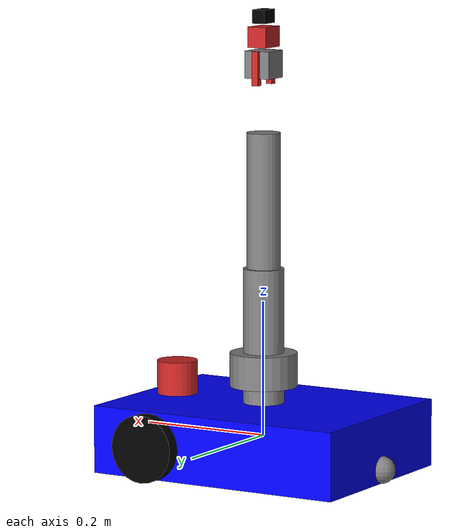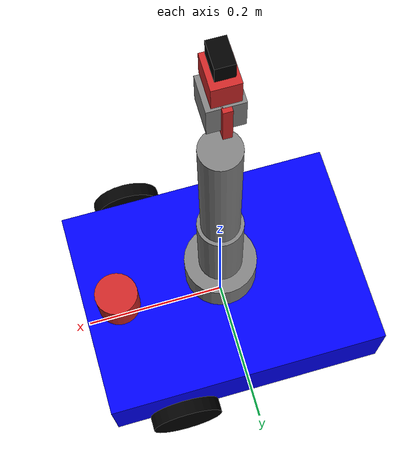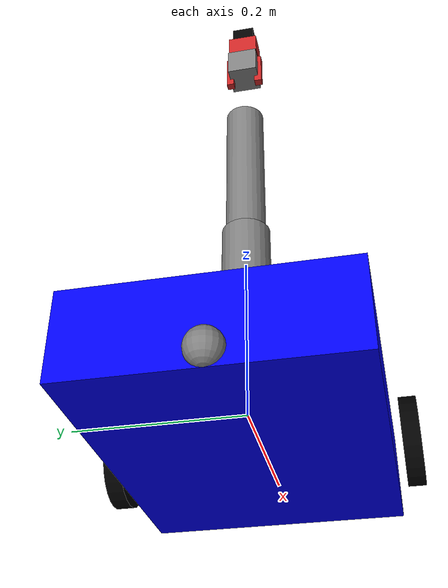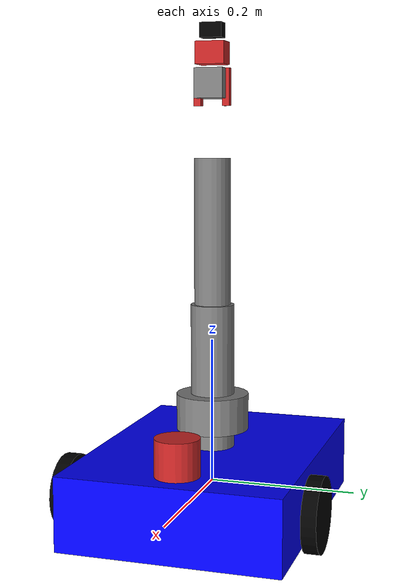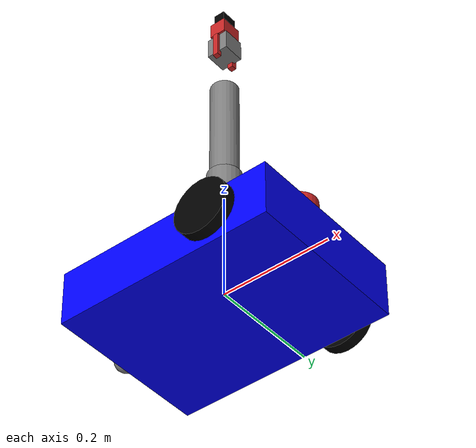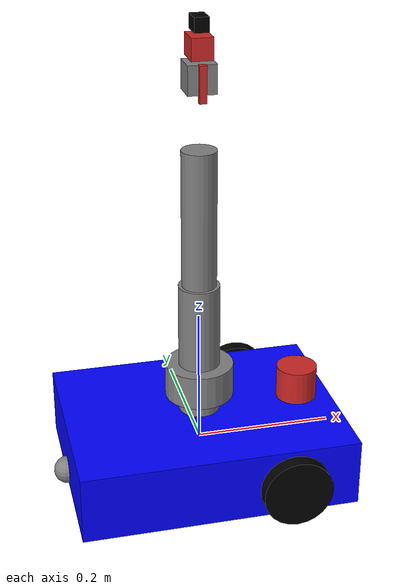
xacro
<?xml version="1.0"?>
<robot name="my_robot" xmlns:xacro="http://www.ros.org/wiki/xacro">

  <xacro:include filename="mobile_base.xacro" />
  <xacro:include filename="robot_arm.xacro" />
  <xacro:include filename="gripper.xacro" />
  <xacro:include filename="camera.xacro" />

  <!-- Base Link definition, usually defined in mobile_base.xacro, but placing a root here for structure -->
  <link name="world"/>
  <joint name="world_joint" type="fixed">
    <parent link="world"/>
    <child link="base_link"/>
    <origin xyz="0 0 0" rpy="0 0 0"/>
  </joint>

</robot>

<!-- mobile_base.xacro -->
<robot xmlns:xacro="http://www.ros.org/wiki/xacro">

  <xacro:property name="M_PI" value="3.1415926535897931" />
  <xacro:property name="base_x_size" value="0.4" />
  <xacro:property name="base_y_size" value="0.3" />
  <xacro:property name="base_z_size" value="0.1" />
  <xacro:property name="wheel_radius" value="0.05" />
  <xacro:property name="wheel_width" value="0.02" />
  <xacro:property name="wheel_offset_x" value="0.1" />
  <xacro:property name="wheel_offset_y" value="0.17" />
  <xacro:property name="caster_radius" value="0.02" />

  <!-- Chassis / Base Link -->
  <link name="base_link">
    <visual>
      <origin xyz="0 0 0" rpy="0 0 0"/>
      <geometry>
        <box size="${base_x_size} ${base_y_size} ${base_z_size}" />
      </geometry>
      <material name="blue">
        <color rgba="0 0 1 1"/>
      </material>
    </visual>
    <collision>
      <origin xyz="0 0 0" rpy="0 0 0"/>
      <geometry>
        <box size="${base_x_size} ${base_y_size} ${base_z_size}" />
      </geometry>
    </collision>
    <inertial>
      <origin xyz="0 0 0" rpy="0 0 0"/>
      <mass value="10.0"/>
      <inertia ixx="0.1" ixy="0.0" ixz="0.0" iyy="0.1" iyz="0.0" izz="0.1"/>
    </inertial>
  </link>

  <!-- Left Wheel Link -->
  <link name="left_wheel_link">
    <visual>
      <origin xyz="0 0 0" rpy="${M_PI/2} 0 0"/>
      <geometry>
        <cylinder radius="${wheel_radius}" length="${wheel_width}" />
      </geometry>
      <material name="black">
        <color rgba="0 0 0 1"/>
      </material>
    </visual>
    <collision>
      <origin xyz="0 0 0" rpy="${M_PI/2} 0 0"/>
      <geometry>
        <cylinder radius="${wheel_radius}" length="${wheel_width}" />
      </geometry>
    </collision>
    <inertial>
      <origin xyz="0 0 0" rpy="0 0 0"/>
      <mass value="0.5"/>
      <inertia ixx="0.001" ixy="0.0" ixz="0.0" iyy="0.001" iyz="0.0" izz="0.001"/>
    </inertial>
  </link>

  <!-- Right Wheel Link -->
  <link name="right_wheel_link">
    <visual>
      <origin xyz="0 0 0" rpy="${M_PI/2} 0 0"/>
      <geometry>
        <cylinder radius="${wheel_radius}" length="${wheel_width}" />
      </geometry>
      <material name="black"/>
    </visual>
    <collision>
      <origin xyz="0 0 0" rpy="${M_PI/2} 0 0"/>
      <geometry>
        <cylinder radius="${wheel_radius}" length="${wheel_width}" />
      </geometry>
    </collision>
    <inertial>
      <origin xyz="0 0 0" rpy="0 0 0"/>
      <mass value="0.5"/>
      <inertia ixx="0.001" ixy="0.0" ixz="0.0" iyy="0.001" iyz="0.0" izz="0.001"/>
    </inertial>
  </link>

  <!-- Caster Wheel Link -->
  <link name="caster_link">
    <visual>
      <origin xyz="0 0 0" rpy="0 0 0"/>
      <geometry>
        <sphere radius="${caster_radius}" />
      </geometry>
      <material name="grey">
        <color rgba="0.5 0.5 0.5 1"/>
      </material>
    </visual>
    <collision>
      <origin xyz="0 0 0" rpy="0 0 0"/>
      <geometry>
        <sphere radius="${caster_radius}" />
      </geometry>
    </collision>
    <inertial>
      <origin xyz="0 0 0" rpy="0 0 0"/>
      <mass value="0.1"/>
      <inertia ixx="0.0001" ixy="0.0" ixz="0.0" iyy="0.0001" iyz="0.0" izz="0.0001"/>
    </inertial>
  </link>

  <!-- Joints -->
  <joint name="left_wheel_joint" type="continuous">
    <parent link="base_link"/>
    <child link="left_wheel_link"/>
    <origin xyz="${wheel_offset_x} ${wheel_offset_y} ${wheel_radius - base_z_size/2}" rpy="0 0 0"/>
    <axis xyz="0 1 0"/>
  </joint>

  <joint name="right_wheel_joint" type="continuous">
    <parent link="base_link"/>
    <child link="right_wheel_link"/>
    <origin xyz="${wheel_offset_x} -${wheel_offset_y} ${wheel_radius - base_z_size/2}" rpy="0 0 0"/>
    <axis xyz="0 1 0"/>
  </joint>

  <joint name="caster_joint" type="fixed">
    <parent link="base_link"/>
    <child link="caster_link"/>
    <origin xyz="-${base_x_size/2} 0 ${caster_radius - base_z_size/2}" rpy="0 0 0"/>
  </joint>

  <!-- Gazebo specific settings for the mobile base -->
  <gazebo reference="base_link">
    <material>Gazebo/Blue</material>
  </gazebo>
  <gazebo reference="left_wheel_link">
    <material>Gazebo/Black</material>
  </gazebo>
  <gazebo reference="right_wheel_link">
    <material>Gazebo/Black</material>
  </gazebo>
  <gazebo reference="caster_link">
    <material>Gazebo/Grey</material>
  </gazebo>

  <!-- Differential drive plugin -->
  <gazebo>
    <plugin name="differential_drive_controller" filename="libros2_gazebo_diff_drive_plugin.so">
      <ros>                   <!-- ROS 2 specific configuration -->
        <namespace>diff_drive</namespace>
        <interface_name>cmd_vel</interface_name>
      </ros>
      <left_joint>left_wheel_joint</left_joint>
      <right_joint>right_wheel_joint</right_joint>
      <wheel_separation>${2*wheel_offset_y}</wheel_separation>
      <wheel_radius>${wheel_radius}</wheel_radius>
      <wheel_torque>200</wheel_torque>
      <publish_wheel_tf>true</publish_wheel_tf>
      <publish_odom>true</publish_odom>
      <publish_wheel_joint_state>true</publish_wheel_joint_state>
      <odometry_frame>odom</odometry_frame>
      <robot_base_frame>base_link</robot_base_frame>
    </plugin>
  </gazebo>

  <!-- Transmission for differential drive -->
  <transmission name="left_wheel_transmission">
    <type>actuator_transmission/SimpleTransmission</type>
    <joint name="left_wheel_joint">
      <hardwareInterface>hardware_interface/VelocityJointInterface</hardwareInterface>
    </joint>
    <actuator name="left_wheel_motor">
      <hardwareInterface>hardware_interface/VelocityJointInterface</hardwareInterface>
      <mechanicalReduction>1</mechanicalReduction>
    </actuator>
  </transmission>

  <transmission name="right_wheel_transmission">
    <type>actuator_transmission/SimpleTransmission</type>
    <joint name="right_wheel_joint">
      <hardwareInterface>hardware_interface/VelocityJointInterface</hardwareInterface>
    </joint>
    <actuator name="right_wheel_motor">
      <hardwareInterface>hardware_interface/VelocityJointInterface</hardwareInterface>
      <mechanicalReduction>1</mechanicalReduction>
    </actuator>
  </transmission>

  <!-- Example LIDAR sensor -->
  <link name="lidar_link">
    <visual>
      <origin xyz="0 0 0" rpy="0 0 0"/>
      <geometry>
        <cylinder radius="0.03" length="0.05"/>
      </geometry>
      <material name="red"/>
    </visual>
    <collision>
      <origin xyz="0 0 0" rpy="0 0 0"/>
      <geometry>
        <cylinder radius="0.03" length="0.05"/>
      </geometry>
    </collision>
    <inertial>
      <origin xyz="0 0 0" rpy="0 0 0"/>
      <mass value="0.1"/>
      <inertia ixx="0.0001" ixy="0.0" ixz="0.0" iyy="0.0001" iyz="0.0" izz="0.0001"/>
    </inertial>
  </link>

  <joint name="lidar_joint" type="fixed">
    <parent link="base_link"/>
    <child link="lidar_link"/>
    <origin xyz="0.15 0 0.075" rpy="0 0 0"/>
  </joint>

  <gazebo reference="lidar_link">
    <material>Gazebo/Red</material>
    <sensor name="lidar_sensor" type="ray">
      <pose>0 0 0 0 0 0</pose>
      <visualize>false</visualize>
      <update_rate>10</update_rate>
      <ray>
        <scan>
          <horizontal>
            <samples>360</samples>
            <resolution>1</resolution>
            <min_angle>-${M_PI}</min_angle>
            <max_angle>${M_PI}</max_angle>
          </horizontal>
        </scan>
        <range>
          <min>0.1</min>
          <max>10.0</max>
          <resolution>0.01</resolution>
        </range>
      </ray>
      <plugin name="gazebo_ros_laser_controller" filename="libgazebo_ros_ray_sensor.so">
        <ros>
          <namespace>/scan</namespace>
          <output_type>sensor_msgs/LaserScan</output_type>
          <frame_id>lidar_link</frame_id>
        </ros>
        <topic_name>scan</topic_name>
      </plugin>
    </sensor>
  </gazebo>

</robot>

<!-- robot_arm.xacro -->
<robot xmlns:xacro="http://www.ros.org/wiki/xacro">

  <xacro:property name="arm_base_offset_z" value="0.05" />

  <!-- Arm base link attached to the mobile base -->
  <link name="arm_base_link">
    <visual>
      <geometry>
        <cylinder radius="0.05" length="0.05"/>
      </geometry>
      <material name="grey"/>
    </visual>
    <collision>
      <geometry>
        <cylinder radius="0.05" length="0.05"/>
      </geometry>
    </collision>
    <inertial>
      <origin xyz="0 0 0" rpy="0 0 0"/>
      <mass value="0.5"/>
      <inertia ixx="0.001" ixy="0.0" ixz="0.0" iyy="0.001" iyz="0.0" izz="0.001"/>
    </inertial>
  </link>

  <joint name="arm_base_joint" type="fixed">
    <parent link="base_link"/>
    <child link="arm_base_link"/>
    <origin xyz="0 0 ${arm_base_offset_z + 0.05}" rpy="0 0 0"/> <!-- Adjusted for base_link height -->
  </joint>

  <!-- Link 1 -->
  <link name="link1">
    <visual>
      <geometry>
        <cylinder radius="0.03" length="0.2"/>
      </geometry>
      <material name="grey"/>
    </visual>
    <collision>
      <geometry>
        <cylinder radius="0.03" length="0.2"/>
      </geometry>
    </collision>
    <inertial>
      <origin xyz="0 0 0.1" rpy="0 0 0"/>
      <mass value="0.5"/>
      <inertia ixx="0.001" ixy="0.0" ixz="0.0" iyy="0.001" iyz="0.0" izz="0.001"/>
    </inertial>
  </link>

  <joint name="joint1" type="revolute">
    <parent link="arm_base_link"/>
    <child link="link1"/>
    <origin xyz="0 0 0.05" rpy="0 0 0"/>
    <axis xyz="0 0 1"/>
    <limit lower="-${M_PI/2}" upper="${M_PI/2}" effort="100" velocity="0.5"/>
    <dynamics damping="0.1" friction="0.1"/>
  </joint>

  <!-- Link 2 -->
  <link name="link2">
    <visual>
      <geometry>
        <cylinder radius="0.025" length="0.2"/>
      </geometry>
      <material name="grey"/>
    </visual>
    <collision>
      <geometry>
        <cylinder radius="0.025" length="0.2"/>
      </geometry>
    </collision>
    <inertial>
      <origin xyz="0 0 0.1" rpy="0 0 0"/>
      <mass value="0.3"/>
      <inertia ixx="0.0005" ixy="0.0" ixz="0.0" iyy="0.0005" iyz="0.0" izz="0.0005"/>
    </inertial>
  </link>

  <joint name="joint2" type="revolute">
    <parent link="link1"/>
    <child link="link2"/>
    <origin xyz="0 0 0.2" rpy="0 0 0"/>
    <axis xyz="0 1 0"/>
    <limit lower="-${M_PI/2}" upper="${M_PI/2}" effort="100" velocity="0.5"/>
    <dynamics damping="0.1" friction="0.1"/>
  </joint>

  <!-- Link 3 (End-effector base) -->
  <link name="link3">
    <visual>
      <geometry>
        <box size="0.04 0.04 0.04"/>
      </geometry>
      <material name="grey"/>
    </visual>
    <collision>
      <geometry>
        <box size="0.04 0.04 0.04"/>
      </geometry>
    </collision>
    <inertial>
      <origin xyz="0 0 0" rpy="0 0 0"/>
      <mass value="0.1"/>
      <inertia ixx="0.0001" ixy="0.0" ixz="0.0" iyy="0.0001" iyz="0.0" izz="0.0001"/>
    </inertial>
  </link>

  <joint name="joint3" type="revolute">
    <parent link="link2"/>
    <child link="link3"/>
    <origin xyz="0 0 0.2" rpy="0 0 0"/>
    <axis xyz="0 1 0"/>
    <limit lower="-${M_PI/2}" upper="${M_PI/2}" effort="100" velocity="0.5"/>
    <dynamics damping="0.1" friction="0.1"/>
  </joint>

  <!-- Transmissions for arm joints -->
  <transmission name="tran1">
    <type>actuator_transmission/SimpleTransmission</type>
    <joint name="joint1">
      <hardwareInterface>hardware_interface/PositionJointInterface</hardwareInterface>
    </joint>
    <actuator name="motor1">
      <hardwareInterface>hardware_interface/PositionJointInterface</hardwareInterface>
      <mechanicalReduction>1</mechanicalReduction>
    </actuator>
  </transmission>

  <transmission name="tran2">
    <type>actuator_transmission/SimpleTransmission</type>
    <joint name="joint2">
      <hardwareInterface>hardware_interface/PositionJointInterface</hardwareInterface>
    </joint>
    <actuator name="motor2">
      <hardwareInterface>hardware_interface/PositionJointInterface</hardwareInterface>
      <mechanicalReduction>1</mechanicalReduction>
    </actuator>
  </transmission>

  <transmission name="tran3">
    <type>actuator_transmission/SimpleTransmission</type>
    <joint name="joint3">
      <hardwareInterface>hardware_interface/PositionJointInterface</hardwareInterface>
    </joint>
    <actuator name="motor3">
      <hardwareInterface>hardware_interface/PositionJointInterface</hardwareInterface>
      <mechanicalReduction>1</mechanicalReduction>
    </actuator>
  </transmission>

  <!-- Gazebo materials -->
  <gazebo reference="arm_base_link">
    <material>Gazebo/Grey</material>
  </gazebo>
  <gazebo reference="link1">
    <material>Gazebo/Grey</material>
  </gazebo>
  <gazebo reference="link2">
    <material>Gazebo/Grey</material>
  </gazebo>
  <gazebo reference="link3">
    <material>Gazebo/Grey</material>
  </gazebo>

</robot>

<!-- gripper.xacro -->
<robot xmlns:xacro="http://www.ros.org/wiki/xacro">

  <xacro:property name="finger_len" value="0.05" />
  <xacro:property name="finger_width" value="0.01" />
  <xacro:property name="finger_thick" value="0.01" />

  <!-- Gripper base link attached to the arm's end-effector -->
  <link name="gripper_base_link">
    <visual>
      <geometry>
        <box size="0.03 0.04 0.03" />
      </geometry>
      <material name="red"/>
    </visual>
    <collision>
      <geometry>
        <box size="0.03 0.04 0.03" />
      </geometry>
    </collision>
    <inertial>
      <origin xyz="0 0 0" rpy="0 0 0"/>
      <mass value="0.05"/>
      <inertia ixx="0.0001" ixy="0.0" ixz="0.0" iyy="0.0001" iyz="0.0" izz="0.0001"/>
    </inertial>
  </link>

  <!-- Joint to attach gripper to arm end-effector -->
  <joint name="gripper_joint" type="fixed">
    <parent link="link3"/> <!-- Attached to the last link of the arm -->
    <child link="gripper_base_link"/>
    <origin xyz="0 0 0.04" rpy="0 0 0"/> <!-- Offset from link3 -->
  </joint>

  <!-- Left Gripper Finger -->
  <link name="left_finger_link">
    <visual>
      <origin xyz="0 0 ${-finger_len/2}" rpy="0 0 0"/>
      <geometry>
        <box size="${finger_thick} ${finger_width} ${finger_len}" />
      </geometry>
      <material name="red"/>
    </visual>
    <collision>
      <origin xyz="0 0 ${-finger_len/2}" rpy="0 0 0"/>
      <geometry>
        <box size="${finger_thick} ${finger_width} ${finger_len}" />
      </geometry>
    </collision>
    <inertial>
      <origin xyz="0 0 ${-finger_len/2}" rpy="0 0 0"/>
      <mass value="0.01"/>
      <inertia ixx="0.00001" ixy="0.0" ixz="0.0" iyy="0.00001" iyz="0.0" izz="0.00001"/>
    </inertial>
  </link>

  <joint name="left_finger_joint" type="prismatic">
    <parent link="gripper_base_link"/>
    <child link="left_finger_link"/>
    <origin xyz="0 0.02 -0.02" rpy="0 0 0"/>
    <axis xyz="0 1 0"/>
    <limit lower="0" upper="0.02" effort="10" velocity="0.1"/>
    <dynamics damping="0.1" friction="0.1"/>
  </joint>

  <!-- Right Gripper Finger -->
  <link name="right_finger_link">
    <visual>
      <origin xyz="0 0 ${-finger_len/2}" rpy="0 0 0"/>
      <geometry>
        <box size="${finger_thick} ${finger_width} ${finger_len}" />
      </geometry>
      <material name="red"/>
    </visual>
    <collision>
      <origin xyz="0 0 ${-finger_len/2}" rpy="0 0 0"/>
      <geometry>
        <box size="${finger_thick} ${finger_width} ${finger_len}" />
      </geometry>
    </collision>
    <inertial>
      <origin xyz="0 0 ${-finger_len/2}" rpy="0 0 0"/>
      <mass value="0.01"/>
      <inertia ixx="0.00001" ixy="0.0" ixz="0.0" iyy="0.00001" iyz="0.0" izz="0.00001"/>
    </inertial>
  </link>

  <joint name="right_finger_joint" type="prismatic">
    <parent link="gripper_base_link"/>
    <child link="right_finger_link"/>
    <origin xyz="0 -0.02 -0.02" rpy="0 0 0"/>
    <axis xyz="0 -1 0"/>
    <limit lower="0" upper="0.02" effort="10" velocity="0.1"/>
    <dynamics damping="0.1" friction="0.1"/>
  </joint>

  <!-- Transmissions for gripper joints -->
  <transmission name="left_finger_transmission">
    <type>actuator_transmission/SimpleTransmission</type>
    <joint name="left_finger_joint">
      <hardwareInterface>hardware_interface/PositionJointInterface</hardwareInterface>
    </joint>
    <actuator name="left_finger_motor">
      <hardwareInterface>hardware_interface/PositionJointInterface</hardwareInterface>
      <mechanicalReduction>1</mechanicalReduction>
    </actuator>
  </transmission>

  <transmission name="right_finger_transmission">
    <type>actuator_transmission/SimpleTransmission</type>
    <joint name="right_finger_joint">
      <hardwareInterface>hardware_interface/PositionJointInterface</hardwareInterface>
    </joint>
    <actuator name="right_finger_motor">
      <hardwareInterface>hardware_interface/PositionJointInterface</hardwareInterface>
      <mechanicalReduction>1</mechanicalReduction>
    </actuator>
  </transmission>

  <gazebo reference="gripper_base_link">
    <material>Gazebo/Red</material>
  </gazebo>
  <gazebo reference="left_finger_link">
    <material>Gazebo/Red</material>
  </gazebo>
  <gazebo reference="right_finger_link">
    <material>Gazebo/Red</material>
  </gazebo>

</robot>

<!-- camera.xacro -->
<robot xmlns:xacro="http://www.ros.org/wiki/xacro">

  <!-- Camera link -->
  <link name="camera_link">
    <visual>
      <geometry>
        <box size="0.02 0.03 0.02" />
      </geometry>
      <material name="black"/>
    </visual>
    <collision>
      <geometry>
        <box size="0.02 0.03 0.02" />
      </geometry>
    </collision>
    <inertial>
      <origin xyz="0 0 0" rpy="0 0 0"/>
      <mass value="0.01"/>
      <inertia ixx="0.000001" ixy="0.0" ixz="0.0" iyy="0.000001" iyz="0.0" izz="0.000001"/>
    </inertial>
  </link>

  <!-- Joint to attach camera to gripper base link -->
  <joint name="camera_joint" type="fixed">
    <parent link="gripper_base_link"/>
    <child link="camera_link"/>
    <origin xyz="0 0 0.03" rpy="0 0 0"/> <!-- Example offset from gripper -->
  </joint>

  <!-- Gazebo camera plugin -->
  <gazebo reference="camera_link">
    <material>Gazebo/Black</material>
    <sensor name="camera_sensor" type="camera">
      <pose>0 0 0 0 0 0</pose>
      <visualize>true</visualize>
      <update_rate>30.0</update_rate>
      <camera>
        <horizontal_fov>1.047</horizontal_fov> <!-- 60 degrees -->
        <image>
          <width>640</width>
          <height>480</height>
          <format>R8G8B8</format>
        </image>
        <clip>
          <near>0.1</near>
          <far>100</far>
        </clip>
      </camera>
      <plugin name="camera_controller" filename="libgazebo_ros_camera.so">
        <ros>
          <namespace>camera</namespace>
          <output_type>sensor_msgs/Image</output_type>
          <frame_id>camera_link</frame_id>
        </ros>
        <camera_name>my_camera</camera_name>
        <image_topic_name>image_raw</image_topic_name>
        <camera_info_topic_name>camera_info</camera_info_topic_name>
        <hack_baseline>0.07</hack_baseline>
      </plugin>
    </sensor>
  </gazebo>

</robot>
